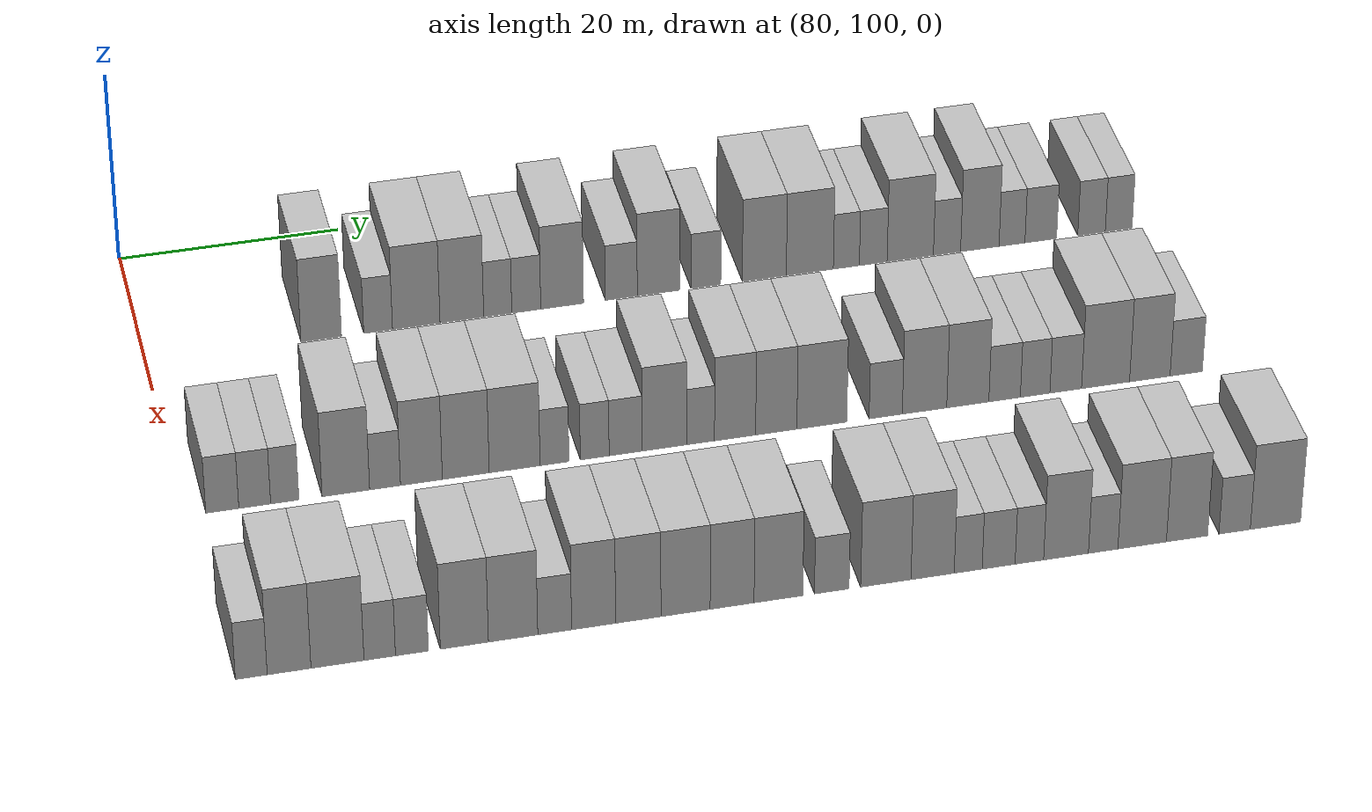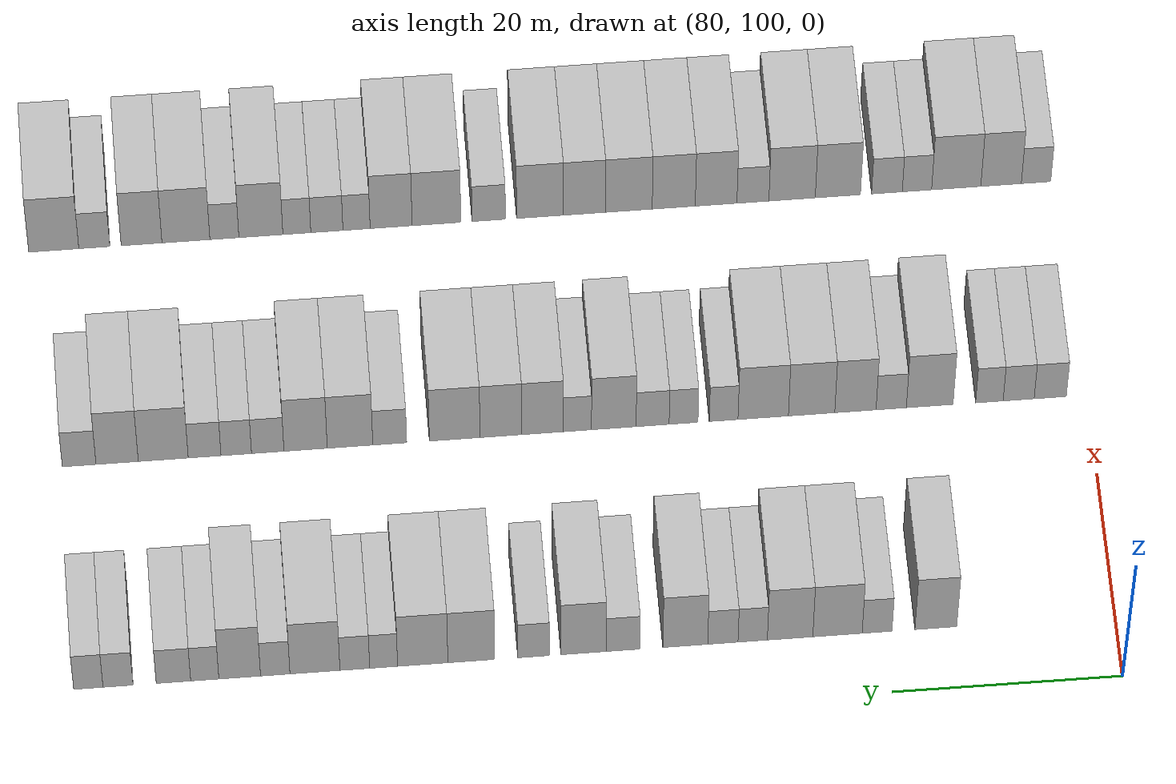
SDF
<sdf version="1.6">
 <world name="default">
  <model name="building_705">
   <static>1</static>
   <pose>91.0000 115.6454 0 0.000000 0.000000 0.000000</pose>
   <link name="link">
    <pose>0 0 4.50 0 0 0</pose>
    <collision name="collision"><geometry><box><size>10.0000 3.6379 9.0000</size></box></geometry></collision>
    <visual name="visual">
     <cast_shadows>0</cast_shadows>
     <geometry><box><size>10.0000 3.6379 9.0000</size></box></geometry>
     <material>
      <script>
       <uri>model://HANNAS_wall/materials/scripts</uri>
       <uri>model://HANNAS_wall/materials/textures</uri>
       <name>vrc/HANNAS_wall</name>
      </script>
     </material>
    </visual>
   </link>
  </model>
  <model name="building_706">
   <static>1</static>
   <pose>91.0000 120.7601 0 0.000000 0.000000 0.000000</pose>
   <link name="link">
    <pose>0 0 3.00 0 0 0</pose>
    <collision name="collision"><geometry><box><size>10.0000 2.5914 6.0000</size></box></geometry></collision>
    <visual name="visual">
     <cast_shadows>0</cast_shadows>
     <geometry><box><size>10.0000 2.5914 6.0000</size></box></geometry>
     <material>
      <script>
       <uri>model://HANNAS_wall/materials/scripts</uri>
       <uri>model://HANNAS_wall/materials/textures</uri>
       <name>vrc/HANNAS_wall</name>
      </script>
     </material>
    </visual>
   </link>
  </model>
  <model name="building_707">
   <static>1</static>
   <pose>91.0000 124.1996 0 0.000000 0.000000 0.000000</pose>
   <link name="link">
    <pose>0 0 4.50 0 0 0</pose>
    <collision name="collision"><geometry><box><size>10.0000 4.2877 9.0000</size></box></geometry></collision>
    <visual name="visual">
     <cast_shadows>0</cast_shadows>
     <geometry><box><size>10.0000 4.2877 9.0000</size></box></geometry>
     <material>
      <script>
       <uri>model://HANNAS_wall/materials/scripts</uri>
       <uri>model://HANNAS_wall/materials/textures</uri>
       <name>vrc/HANNAS_wall</name>
      </script>
     </material>
    </visual>
   </link>
  </model>
  <model name="building_708">
   <static>1</static>
   <pose>91.0000 128.3215 0 0.000000 0.000000 0.000000</pose>
   <link name="link">
    <pose>0 0 4.50 0 0 0</pose>
    <collision name="collision"><geometry><box><size>10.0000 3.9561 9.0000</size></box></geometry></collision>
    <visual name="visual">
     <cast_shadows>0</cast_shadows>
     <geometry><box><size>10.0000 3.9561 9.0000</size></box></geometry>
     <material>
      <script>
       <uri>model://HANNAS_wall/materials/scripts</uri>
       <uri>model://HANNAS_wall/materials/textures</uri>
       <name>vrc/HANNAS_wall</name>
      </script>
     </material>
    </visual>
   </link>
  </model>
  <model name="building_709">
   <static>1</static>
   <pose>91.0000 131.5727 0 0.000000 0.000000 0.000000</pose>
   <link name="link">
    <pose>0 0 3.00 0 0 0</pose>
    <collision name="collision"><geometry><box><size>10.0000 2.5462 6.0000</size></box></geometry></collision>
    <visual name="visual">
     <cast_shadows>0</cast_shadows>
     <geometry><box><size>10.0000 2.5462 6.0000</size></box></geometry>
     <material>
      <script>
       <uri>model://HANNAS_wall/materials/scripts</uri>
       <uri>model://HANNAS_wall/materials/textures</uri>
       <name>vrc/HANNAS_wall</name>
      </script>
     </material>
    </visual>
   </link>
  </model>
  <model name="building_710">
   <static>1</static>
   <pose>91.0000 134.1637 0 0.000000 0.000000 0.000000</pose>
   <link name="link">
    <pose>0 0 3.00 0 0 0</pose>
    <collision name="collision"><geometry><box><size>10.0000 2.6357 6.0000</size></box></geometry></collision>
    <visual name="visual">
     <cast_shadows>0</cast_shadows>
     <geometry><box><size>10.0000 2.6357 6.0000</size></box></geometry>
     <material>
      <script>
       <uri>model://HANNAS_wall/materials/scripts</uri>
       <uri>model://HANNAS_wall/materials/textures</uri>
       <name>vrc/HANNAS_wall</name>
      </script>
     </material>
    </visual>
   </link>
  </model>
  <model name="building_711">
   <static>1</static>
   <pose>91.0000 137.4288 0 0.000000 0.000000 0.000000</pose>
   <link name="link">
    <pose>0 0 4.50 0 0 0</pose>
    <collision name="collision"><geometry><box><size>10.0000 3.8945 9.0000</size></box></geometry></collision>
    <visual name="visual">
     <cast_shadows>0</cast_shadows>
     <geometry><box><size>10.0000 3.8945 9.0000</size></box></geometry>
     <material>
      <script>
       <uri>model://HANNAS_wall/materials/scripts</uri>
       <uri>model://HANNAS_wall/materials/textures</uri>
       <name>vrc/HANNAS_wall</name>
      </script>
     </material>
    </visual>
   </link>
  </model>
  <model name="building_712">
   <static>1</static>
   <pose>91.0000 142.8371 0 0.000000 0.000000 0.000000</pose>
   <link name="link">
    <pose>0 0 3.00 0 0 0</pose>
    <collision name="collision"><geometry><box><size>10.0000 2.9221 6.0000</size></box></geometry></collision>
    <visual name="visual">
     <cast_shadows>0</cast_shadows>
     <geometry><box><size>10.0000 2.9221 6.0000</size></box></geometry>
     <material>
      <script>
       <uri>model://HANNAS_wall/materials/scripts</uri>
       <uri>model://HANNAS_wall/materials/textures</uri>
       <name>vrc/HANNAS_wall</name>
      </script>
     </material>
    </visual>
   </link>
  </model>
  <model name="building_713">
   <static>1</static>
   <pose>91.0000 146.2590 0 0.000000 0.000000 0.000000</pose>
   <link name="link">
    <pose>0 0 4.50 0 0 0</pose>
    <collision name="collision"><geometry><box><size>10.0000 3.9218 9.0000</size></box></geometry></collision>
    <visual name="visual">
     <cast_shadows>0</cast_shadows>
     <geometry><box><size>10.0000 3.9218 9.0000</size></box></geometry>
     <material>
      <script>
       <uri>model://HANNAS_wall/materials/scripts</uri>
       <uri>model://HANNAS_wall/materials/textures</uri>
       <name>vrc/HANNAS_wall</name>
      </script>
     </material>
    </visual>
   </link>
  </model>
  <model name="building_714">
   <static>1</static>
   <pose>91.0000 150.5899 0 0.000000 0.000000 0.000000</pose>
   <link name="link">
    <pose>0 0 3.00 0 0 0</pose>
    <collision name="collision"><geometry><box><size>10.0000 2.7399 6.0000</size></box></geometry></collision>
    <visual name="visual">
     <cast_shadows>0</cast_shadows>
     <geometry><box><size>10.0000 2.7399 6.0000</size></box></geometry>
     <material>
      <script>
       <uri>model://HANNAS_wall/materials/scripts</uri>
       <uri>model://HANNAS_wall/materials/textures</uri>
       <name>vrc/HANNAS_wall</name>
      </script>
     </material>
    </visual>
   </link>
  </model>
  <model name="building_715">
   <static>1</static>
   <pose>91.0000 155.9885 0 0.000000 0.000000 0.000000</pose>
   <link name="link">
    <pose>0 0 4.50 0 0 0</pose>
    <collision name="collision"><geometry><box><size>10.0000 4.0573 9.0000</size></box></geometry></collision>
    <visual name="visual">
     <cast_shadows>0</cast_shadows>
     <geometry><box><size>10.0000 4.0573 9.0000</size></box></geometry>
     <material>
      <script>
       <uri>model://HANNAS_wall/materials/scripts</uri>
       <uri>model://HANNAS_wall/materials/textures</uri>
       <name>vrc/HANNAS_wall</name>
      </script>
     </material>
    </visual>
   </link>
  </model>
  <model name="building_716">
   <static>1</static>
   <pose>91.0000 160.1954 0 0.000000 0.000000 0.000000</pose>
   <link name="link">
    <pose>0 0 4.50 0 0 0</pose>
    <collision name="collision"><geometry><box><size>10.0000 4.3566 9.0000</size></box></geometry></collision>
    <visual name="visual">
     <cast_shadows>0</cast_shadows>
     <geometry><box><size>10.0000 4.3566 9.0000</size></box></geometry>
     <material>
      <script>
       <uri>model://HANNAS_wall/materials/scripts</uri>
       <uri>model://HANNAS_wall/materials/textures</uri>
       <name>vrc/HANNAS_wall</name>
      </script>
     </material>
    </visual>
   </link>
  </model>
  <model name="building_717">
   <static>1</static>
   <pose>91.0000 163.5819 0 0.000000 0.000000 0.000000</pose>
   <link name="link">
    <pose>0 0 3.00 0 0 0</pose>
    <collision name="collision"><geometry><box><size>10.0000 2.4165 6.0000</size></box></geometry></collision>
    <visual name="visual">
     <cast_shadows>0</cast_shadows>
     <geometry><box><size>10.0000 2.4165 6.0000</size></box></geometry>
     <material>
      <script>
       <uri>model://HANNAS_wall/materials/scripts</uri>
       <uri>model://HANNAS_wall/materials/textures</uri>
       <name>vrc/HANNAS_wall</name>
      </script>
     </material>
    </visual>
   </link>
  </model>
  <model name="building_718">
   <static>1</static>
   <pose>91.0000 166.0797 0 0.000000 0.000000 0.000000</pose>
   <link name="link">
    <pose>0 0 3.00 0 0 0</pose>
    <collision name="collision"><geometry><box><size>10.0000 2.5789 6.0000</size></box></geometry></collision>
    <visual name="visual">
     <cast_shadows>0</cast_shadows>
     <geometry><box><size>10.0000 2.5789 6.0000</size></box></geometry>
     <material>
      <script>
       <uri>model://HANNAS_wall/materials/scripts</uri>
       <uri>model://HANNAS_wall/materials/textures</uri>
       <name>vrc/HANNAS_wall</name>
      </script>
     </material>
    </visual>
   </link>
  </model>
  <model name="building_719">
   <static>1</static>
   <pose>91.0000 169.5313 0 0.000000 0.000000 0.000000</pose>
   <link name="link">
    <pose>0 0 4.50 0 0 0</pose>
    <collision name="collision"><geometry><box><size>10.0000 4.3245 9.0000</size></box></geometry></collision>
    <visual name="visual">
     <cast_shadows>0</cast_shadows>
     <geometry><box><size>10.0000 4.3245 9.0000</size></box></geometry>
     <material>
      <script>
       <uri>model://HANNAS_wall/materials/scripts</uri>
       <uri>model://HANNAS_wall/materials/textures</uri>
       <name>vrc/HANNAS_wall</name>
      </script>
     </material>
    </visual>
   </link>
  </model>
  <model name="building_720">
   <static>1</static>
   <pose>91.0000 172.9645 0 0.000000 0.000000 0.000000</pose>
   <link name="link">
    <pose>0 0 3.00 0 0 0</pose>
    <collision name="collision"><geometry><box><size>10.0000 2.5418 6.0000</size></box></geometry></collision>
    <visual name="visual">
     <cast_shadows>0</cast_shadows>
     <geometry><box><size>10.0000 2.5418 6.0000</size></box></geometry>
     <material>
      <script>
       <uri>model://HANNAS_wall/materials/scripts</uri>
       <uri>model://HANNAS_wall/materials/textures</uri>
       <name>vrc/HANNAS_wall</name>
      </script>
     </material>
    </visual>
   </link>
  </model>
  <model name="building_721">
   <static>1</static>
   <pose>91.0000 176.0372 0 0.000000 0.000000 0.000000</pose>
   <link name="link">
    <pose>0 0 4.50 0 0 0</pose>
    <collision name="collision"><geometry><box><size>10.0000 3.6036 9.0000</size></box></geometry></collision>
    <visual name="visual">
     <cast_shadows>0</cast_shadows>
     <geometry><box><size>10.0000 3.6036 9.0000</size></box></geometry>
     <material>
      <script>
       <uri>model://HANNAS_wall/materials/scripts</uri>
       <uri>model://HANNAS_wall/materials/textures</uri>
       <name>vrc/HANNAS_wall</name>
      </script>
     </material>
    </visual>
   </link>
  </model>
  <model name="building_722">
   <static>1</static>
   <pose>91.0000 179.0562 0 0.000000 0.000000 0.000000</pose>
   <link name="link">
    <pose>0 0 3.00 0 0 0</pose>
    <collision name="collision"><geometry><box><size>10.0000 2.4345 6.0000</size></box></geometry></collision>
    <visual name="visual">
     <cast_shadows>0</cast_shadows>
     <geometry><box><size>10.0000 2.4345 6.0000</size></box></geometry>
     <material>
      <script>
       <uri>model://HANNAS_wall/materials/scripts</uri>
       <uri>model://HANNAS_wall/materials/textures</uri>
       <name>vrc/HANNAS_wall</name>
      </script>
     </material>
    </visual>
   </link>
  </model>
  <model name="building_723">
   <static>1</static>
   <pose>91.0000 181.7619 0 0.000000 0.000000 0.000000</pose>
   <link name="link">
    <pose>0 0 3.00 0 0 0</pose>
    <collision name="collision"><geometry><box><size>10.0000 2.9769 6.0000</size></box></geometry></collision>
    <visual name="visual">
     <cast_shadows>0</cast_shadows>
     <geometry><box><size>10.0000 2.9769 6.0000</size></box></geometry>
     <material>
      <script>
       <uri>model://HANNAS_wall/materials/scripts</uri>
       <uri>model://HANNAS_wall/materials/textures</uri>
       <name>vrc/HANNAS_wall</name>
      </script>
     </material>
    </visual>
   </link>
  </model>
  <model name="building_724">
   <static>1</static>
   <pose>91.0000 186.5496 0 0.000000 0.000000 0.000000</pose>
   <link name="link">
    <pose>0 0 3.00 0 0 0</pose>
    <collision name="collision"><geometry><box><size>10.0000 2.5984 6.0000</size></box></geometry></collision>
    <visual name="visual">
     <cast_shadows>0</cast_shadows>
     <geometry><box><size>10.0000 2.5984 6.0000</size></box></geometry>
     <material>
      <script>
       <uri>model://HANNAS_wall/materials/scripts</uri>
       <uri>model://HANNAS_wall/materials/textures</uri>
       <name>vrc/HANNAS_wall</name>
      </script>
     </material>
    </visual>
   </link>
  </model>
  <model name="building_725">
   <static>1</static>
   <pose>91.0000 189.1140 0 0.000000 0.000000 0.000000</pose>
   <link name="link">
    <pose>0 0 3.00 0 0 0</pose>
    <collision name="collision"><geometry><box><size>10.0000 2.5305 6.0000</size></box></geometry></collision>
    <visual name="visual">
     <cast_shadows>0</cast_shadows>
     <geometry><box><size>10.0000 2.5305 6.0000</size></box></geometry>
     <material>
      <script>
       <uri>model://HANNAS_wall/materials/scripts</uri>
       <uri>model://HANNAS_wall/materials/textures</uri>
       <name>vrc/HANNAS_wall</name>
      </script>
     </material>
    </visual>
   </link>
  </model>
  <model name="building_881">
   <static>1</static>
   <pose>113.0000 103.3007 0 0.000000 0.000000 0.000000</pose>
   <link name="link">
    <pose>0 0 3.00 0 0 0</pose>
    <collision name="collision"><geometry><box><size>10.0000 2.8365 6.0000</size></box></geometry></collision>
    <visual name="visual">
     <cast_shadows>0</cast_shadows>
     <geometry><box><size>10.0000 2.8365 6.0000</size></box></geometry>
     <material>
      <script>
       <uri>model://HANNAS_wall/materials/scripts</uri>
       <uri>model://HANNAS_wall/materials/textures</uri>
       <name>vrc/HANNAS_wall</name>
      </script>
     </material>
    </visual>
   </link>
  </model>
  <model name="building_882">
   <static>1</static>
   <pose>113.0000 106.0885 0 0.000000 0.000000 0.000000</pose>
   <link name="link">
    <pose>0 0 3.00 0 0 0</pose>
    <collision name="collision"><geometry><box><size>10.0000 2.7393 6.0000</size></box></geometry></collision>
    <visual name="visual">
     <cast_shadows>0</cast_shadows>
     <geometry><box><size>10.0000 2.7393 6.0000</size></box></geometry>
     <material>
      <script>
       <uri>model://HANNAS_wall/materials/scripts</uri>
       <uri>model://HANNAS_wall/materials/textures</uri>
       <name>vrc/HANNAS_wall</name>
      </script>
     </material>
    </visual>
   </link>
  </model>
  <model name="building_883">
   <static>1</static>
   <pose>113.0000 108.6745 0 0.000000 0.000000 0.000000</pose>
   <link name="link">
    <pose>0 0 3.00 0 0 0</pose>
    <collision name="collision"><geometry><box><size>10.0000 2.4327 6.0000</size></box></geometry></collision>
    <visual name="visual">
     <cast_shadows>0</cast_shadows>
     <geometry><box><size>10.0000 2.4327 6.0000</size></box></geometry>
     <material>
      <script>
       <uri>model://HANNAS_wall/materials/scripts</uri>
       <uri>model://HANNAS_wall/materials/textures</uri>
       <name>vrc/HANNAS_wall</name>
      </script>
     </material>
    </visual>
   </link>
  </model>
  <model name="building_884">
   <static>1</static>
   <pose>113.0000 113.9503 0 0.000000 0.000000 0.000000</pose>
   <link name="link">
    <pose>0 0 4.50 0 0 0</pose>
    <collision name="collision"><geometry><box><size>10.0000 4.1188 9.0000</size></box></geometry></collision>
    <visual name="visual">
     <cast_shadows>0</cast_shadows>
     <geometry><box><size>10.0000 4.1188 9.0000</size></box></geometry>
     <material>
      <script>
       <uri>model://HANNAS_wall/materials/scripts</uri>
       <uri>model://HANNAS_wall/materials/textures</uri>
       <name>vrc/HANNAS_wall</name>
      </script>
     </material>
    </visual>
   </link>
  </model>
  <model name="building_885">
   <static>1</static>
   <pose>113.0000 117.3476 0 0.000000 0.000000 0.000000</pose>
   <link name="link">
    <pose>0 0 3.00 0 0 0</pose>
    <collision name="collision"><geometry><box><size>10.0000 2.6758 6.0000</size></box></geometry></collision>
    <visual name="visual">
     <cast_shadows>0</cast_shadows>
     <geometry><box><size>10.0000 2.6758 6.0000</size></box></geometry>
     <material>
      <script>
       <uri>model://HANNAS_wall/materials/scripts</uri>
       <uri>model://HANNAS_wall/materials/textures</uri>
       <name>vrc/HANNAS_wall</name>
      </script>
     </material>
    </visual>
   </link>
  </model>
  <model name="building_886">
   <static>1</static>
   <pose>113.0000 120.5058 0 0.000000 0.000000 0.000000</pose>
   <link name="link">
    <pose>0 0 4.50 0 0 0</pose>
    <collision name="collision"><geometry><box><size>10.0000 3.6405 9.0000</size></box></geometry></collision>
    <visual name="visual">
     <cast_shadows>0</cast_shadows>
     <geometry><box><size>10.0000 3.6405 9.0000</size></box></geometry>
     <material>
      <script>
       <uri>model://HANNAS_wall/materials/scripts</uri>
       <uri>model://HANNAS_wall/materials/textures</uri>
       <name>vrc/HANNAS_wall</name>
      </script>
     </material>
    </visual>
   </link>
  </model>
  <model name="building_887">
   <static>1</static>
   <pose>113.0000 124.3712 0 0.000000 0.000000 0.000000</pose>
   <link name="link">
    <pose>0 0 4.50 0 0 0</pose>
    <collision name="collision"><geometry><box><size>10.0000 4.0903 9.0000</size></box></geometry></collision>
    <visual name="visual">
     <cast_shadows>0</cast_shadows>
     <geometry><box><size>10.0000 4.0903 9.0000</size></box></geometry>
     <material>
      <script>
       <uri>model://HANNAS_wall/materials/scripts</uri>
       <uri>model://HANNAS_wall/materials/textures</uri>
       <name>vrc/HANNAS_wall</name>
      </script>
     </material>
    </visual>
   </link>
  </model>
  <model name="building_888">
   <static>1</static>
   <pose>113.0000 128.6389 0 0.000000 0.000000 0.000000</pose>
   <link name="link">
    <pose>0 0 4.50 0 0 0</pose>
    <collision name="collision"><geometry><box><size>10.0000 4.4450 9.0000</size></box></geometry></collision>
    <visual name="visual">
     <cast_shadows>0</cast_shadows>
     <geometry><box><size>10.0000 4.4450 9.0000</size></box></geometry>
     <material>
      <script>
       <uri>model://HANNAS_wall/materials/scripts</uri>
       <uri>model://HANNAS_wall/materials/textures</uri>
       <name>vrc/HANNAS_wall</name>
      </script>
     </material>
    </visual>
   </link>
  </model>
  <model name="building_889">
   <static>1</static>
   <pose>113.0000 132.1271 0 0.000000 0.000000 0.000000</pose>
   <link name="link">
    <pose>0 0 3.00 0 0 0</pose>
    <collision name="collision"><geometry><box><size>10.0000 2.5314 6.0000</size></box></geometry></collision>
    <visual name="visual">
     <cast_shadows>0</cast_shadows>
     <geometry><box><size>10.0000 2.5314 6.0000</size></box></geometry>
     <material>
      <script>
       <uri>model://HANNAS_wall/materials/scripts</uri>
       <uri>model://HANNAS_wall/materials/textures</uri>
       <name>vrc/HANNAS_wall</name>
      </script>
     </material>
    </visual>
   </link>
  </model>
  <model name="building_890">
   <static>1</static>
   <pose>113.0000 135.6625 0 0.000000 0.000000 0.000000</pose>
   <link name="link">
    <pose>0 0 3.00 0 0 0</pose>
    <collision name="collision"><geometry><box><size>10.0000 2.5394 6.0000</size></box></geometry></collision>
    <visual name="visual">
     <cast_shadows>0</cast_shadows>
     <geometry><box><size>10.0000 2.5394 6.0000</size></box></geometry>
     <material>
      <script>
       <uri>model://HANNAS_wall/materials/scripts</uri>
       <uri>model://HANNAS_wall/materials/textures</uri>
       <name>vrc/HANNAS_wall</name>
      </script>
     </material>
    </visual>
   </link>
  </model>
  <model name="building_891">
   <static>1</static>
   <pose>113.0000 138.3863 0 0.000000 0.000000 0.000000</pose>
   <link name="link">
    <pose>0 0 3.00 0 0 0</pose>
    <collision name="collision"><geometry><box><size>10.0000 2.9083 6.0000</size></box></geometry></collision>
    <visual name="visual">
     <cast_shadows>0</cast_shadows>
     <geometry><box><size>10.0000 2.9083 6.0000</size></box></geometry>
     <material>
      <script>
       <uri>model://HANNAS_wall/materials/scripts</uri>
       <uri>model://HANNAS_wall/materials/textures</uri>
       <name>vrc/HANNAS_wall</name>
      </script>
     </material>
    </visual>
   </link>
  </model>
  <model name="building_892">
   <static>1</static>
   <pose>113.0000 141.8048 0 0.000000 0.000000 0.000000</pose>
   <link name="link">
    <pose>0 0 4.50 0 0 0</pose>
    <collision name="collision"><geometry><box><size>10.0000 3.9286 9.0000</size></box></geometry></collision>
    <visual name="visual">
     <cast_shadows>0</cast_shadows>
     <geometry><box><size>10.0000 3.9286 9.0000</size></box></geometry>
     <material>
      <script>
       <uri>model://HANNAS_wall/materials/scripts</uri>
       <uri>model://HANNAS_wall/materials/textures</uri>
       <name>vrc/HANNAS_wall</name>
      </script>
     </material>
    </visual>
   </link>
  </model>
  <model name="building_893">
   <static>1</static>
   <pose>113.0000 145.0066 0 0.000000 0.000000 0.000000</pose>
   <link name="link">
    <pose>0 0 3.00 0 0 0</pose>
    <collision name="collision"><geometry><box><size>10.0000 2.4750 6.0000</size></box></geometry></collision>
    <visual name="visual">
     <cast_shadows>0</cast_shadows>
     <geometry><box><size>10.0000 2.4750 6.0000</size></box></geometry>
     <material>
      <script>
       <uri>model://HANNAS_wall/materials/scripts</uri>
       <uri>model://HANNAS_wall/materials/textures</uri>
       <name>vrc/HANNAS_wall</name>
      </script>
     </material>
    </visual>
   </link>
  </model>
  <model name="building_894">
   <static>1</static>
   <pose>113.0000 148.0712 0 0.000000 0.000000 0.000000</pose>
   <link name="link">
    <pose>0 0 4.50 0 0 0</pose>
    <collision name="collision"><geometry><box><size>10.0000 3.6544 9.0000</size></box></geometry></collision>
    <visual name="visual">
     <cast_shadows>0</cast_shadows>
     <geometry><box><size>10.0000 3.6544 9.0000</size></box></geometry>
     <material>
      <script>
       <uri>model://HANNAS_wall/materials/scripts</uri>
       <uri>model://HANNAS_wall/materials/textures</uri>
       <name>vrc/HANNAS_wall</name>
      </script>
     </material>
    </visual>
   </link>
  </model>
  <model name="building_895">
   <static>1</static>
   <pose>113.0000 151.7336 0 0.000000 0.000000 0.000000</pose>
   <link name="link">
    <pose>0 0 4.50 0 0 0</pose>
    <collision name="collision"><geometry><box><size>10.0000 3.6705 9.0000</size></box></geometry></collision>
    <visual name="visual">
     <cast_shadows>0</cast_shadows>
     <geometry><box><size>10.0000 3.6705 9.0000</size></box></geometry>
     <material>
      <script>
       <uri>model://HANNAS_wall/materials/scripts</uri>
       <uri>model://HANNAS_wall/materials/textures</uri>
       <name>vrc/HANNAS_wall</name>
      </script>
     </material>
    </visual>
   </link>
  </model>
  <model name="building_896">
   <static>1</static>
   <pose>113.0000 155.7961 0 0.000000 0.000000 0.000000</pose>
   <link name="link">
    <pose>0 0 4.50 0 0 0</pose>
    <collision name="collision"><geometry><box><size>10.0000 4.4544 9.0000</size></box></geometry></collision>
    <visual name="visual">
     <cast_shadows>0</cast_shadows>
     <geometry><box><size>10.0000 4.4544 9.0000</size></box></geometry>
     <material>
      <script>
       <uri>model://HANNAS_wall/materials/scripts</uri>
       <uri>model://HANNAS_wall/materials/textures</uri>
       <name>vrc/HANNAS_wall</name>
      </script>
     </material>
    </visual>
   </link>
  </model>
  <model name="building_897">
   <static>1</static>
   <pose>113.0000 161.5107 0 0.000000 0.000000 0.000000</pose>
   <link name="link">
    <pose>0 0 3.00 0 0 0</pose>
    <collision name="collision"><geometry><box><size>10.0000 2.9748 6.0000</size></box></geometry></collision>
    <visual name="visual">
     <cast_shadows>0</cast_shadows>
     <geometry><box><size>10.0000 2.9748 6.0000</size></box></geometry>
     <material>
      <script>
       <uri>model://HANNAS_wall/materials/scripts</uri>
       <uri>model://HANNAS_wall/materials/textures</uri>
       <name>vrc/HANNAS_wall</name>
      </script>
     </material>
    </visual>
   </link>
  </model>
  <model name="building_898">
   <static>1</static>
   <pose>113.0000 164.9977 0 0.000000 0.000000 0.000000</pose>
   <link name="link">
    <pose>0 0 4.50 0 0 0</pose>
    <collision name="collision"><geometry><box><size>10.0000 3.9992 9.0000</size></box></geometry></collision>
    <visual name="visual">
     <cast_shadows>0</cast_shadows>
     <geometry><box><size>10.0000 3.9992 9.0000</size></box></geometry>
     <material>
      <script>
       <uri>model://HANNAS_wall/materials/scripts</uri>
       <uri>model://HANNAS_wall/materials/textures</uri>
       <name>vrc/HANNAS_wall</name>
      </script>
     </material>
    </visual>
   </link>
  </model>
  <model name="building_899">
   <static>1</static>
   <pose>113.0000 168.8982 0 0.000000 0.000000 0.000000</pose>
   <link name="link">
    <pose>0 0 4.50 0 0 0</pose>
    <collision name="collision"><geometry><box><size>10.0000 3.8018 9.0000</size></box></geometry></collision>
    <visual name="visual">
     <cast_shadows>0</cast_shadows>
     <geometry><box><size>10.0000 3.8018 9.0000</size></box></geometry>
     <material>
      <script>
       <uri>model://HANNAS_wall/materials/scripts</uri>
       <uri>model://HANNAS_wall/materials/textures</uri>
       <name>vrc/HANNAS_wall</name>
      </script>
     </material>
    </visual>
   </link>
  </model>
  <model name="building_900">
   <static>1</static>
   <pose>113.0000 172.2239 0 0.000000 0.000000 0.000000</pose>
   <link name="link">
    <pose>0 0 3.00 0 0 0</pose>
    <collision name="collision"><geometry><box><size>10.0000 2.8495 6.0000</size></box></geometry></collision>
    <visual name="visual">
     <cast_shadows>0</cast_shadows>
     <geometry><box><size>10.0000 2.8495 6.0000</size></box></geometry>
     <material>
      <script>
       <uri>model://HANNAS_wall/materials/scripts</uri>
       <uri>model://HANNAS_wall/materials/textures</uri>
       <name>vrc/HANNAS_wall</name>
      </script>
     </material>
    </visual>
   </link>
  </model>
  <model name="building_901">
   <static>1</static>
   <pose>113.0000 174.9864 0 0.000000 0.000000 0.000000</pose>
   <link name="link">
    <pose>0 0 3.00 0 0 0</pose>
    <collision name="collision"><geometry><box><size>10.0000 2.6756 6.0000</size></box></geometry></collision>
    <visual name="visual">
     <cast_shadows>0</cast_shadows>
     <geometry><box><size>10.0000 2.6756 6.0000</size></box></geometry>
     <material>
      <script>
       <uri>model://HANNAS_wall/materials/scripts</uri>
       <uri>model://HANNAS_wall/materials/textures</uri>
       <name>vrc/HANNAS_wall</name>
      </script>
     </material>
    </visual>
   </link>
  </model>
  <model name="building_902">
   <static>1</static>
   <pose>113.0000 177.7617 0 0.000000 0.000000 0.000000</pose>
   <link name="link">
    <pose>0 0 3.00 0 0 0</pose>
    <collision name="collision"><geometry><box><size>10.0000 2.8749 6.0000</size></box></geometry></collision>
    <visual name="visual">
     <cast_shadows>0</cast_shadows>
     <geometry><box><size>10.0000 2.8749 6.0000</size></box></geometry>
     <material>
      <script>
       <uri>model://HANNAS_wall/materials/scripts</uri>
       <uri>model://HANNAS_wall/materials/textures</uri>
       <name>vrc/HANNAS_wall</name>
      </script>
     </material>
    </visual>
   </link>
  </model>
  <model name="building_903">
   <static>1</static>
   <pose>113.0000 181.3875 0 0.000000 0.000000 0.000000</pose>
   <link name="link">
    <pose>0 0 4.50 0 0 0</pose>
    <collision name="collision"><geometry><box><size>10.0000 4.3768 9.0000</size></box></geometry></collision>
    <visual name="visual">
     <cast_shadows>0</cast_shadows>
     <geometry><box><size>10.0000 4.3768 9.0000</size></box></geometry>
     <material>
      <script>
       <uri>model://HANNAS_wall/materials/scripts</uri>
       <uri>model://HANNAS_wall/materials/textures</uri>
       <name>vrc/HANNAS_wall</name>
      </script>
     </material>
    </visual>
   </link>
  </model>
  <model name="building_904">
   <static>1</static>
   <pose>113.0000 185.4279 0 0.000000 0.000000 0.000000</pose>
   <link name="link">
    <pose>0 0 4.50 0 0 0</pose>
    <collision name="collision"><geometry><box><size>10.0000 3.7041 9.0000</size></box></geometry></collision>
    <visual name="visual">
     <cast_shadows>0</cast_shadows>
     <geometry><box><size>10.0000 3.7041 9.0000</size></box></geometry>
     <material>
      <script>
       <uri>model://HANNAS_wall/materials/scripts</uri>
       <uri>model://HANNAS_wall/materials/textures</uri>
       <name>vrc/HANNAS_wall</name>
      </script>
     </material>
    </visual>
   </link>
  </model>
  <model name="building_905">
   <static>1</static>
   <pose>113.0000 188.7568 0 0.000000 0.000000 0.000000</pose>
   <link name="link">
    <pose>0 0 3.00 0 0 0</pose>
    <collision name="collision"><geometry><box><size>10.0000 2.9536 6.0000</size></box></geometry></collision>
    <visual name="visual">
     <cast_shadows>0</cast_shadows>
     <geometry><box><size>10.0000 2.9536 6.0000</size></box></geometry>
     <material>
      <script>
       <uri>model://HANNAS_wall/materials/scripts</uri>
       <uri>model://HANNAS_wall/materials/textures</uri>
       <name>vrc/HANNAS_wall</name>
      </script>
     </material>
    </visual>
   </link>
  </model>
  <model name="building_1076">
   <static>1</static>
   <pose>135.0000 102.1915 0 0.000000 0.000000 0.000000</pose>
   <link name="link">
    <pose>0 0 3.00 0 0 0</pose>
    <collision name="collision"><geometry><box><size>10.0000 2.6352 6.0000</size></box></geometry></collision>
    <visual name="visual">
     <cast_shadows>0</cast_shadows>
     <geometry><box><size>10.0000 2.6352 6.0000</size></box></geometry>
     <material>
      <script>
       <uri>model://HANNAS_wall/materials/scripts</uri>
       <uri>model://HANNAS_wall/materials/textures</uri>
       <name>vrc/HANNAS_wall</name>
      </script>
     </material>
    </visual>
   </link>
  </model>
  <model name="building_1077">
   <static>1</static>
   <pose>135.0000 105.3240 0 0.000000 0.000000 0.000000</pose>
   <link name="link">
    <pose>0 0 4.50 0 0 0</pose>
    <collision name="collision"><geometry><box><size>10.0000 3.6299 9.0000</size></box></geometry></collision>
    <visual name="visual">
     <cast_shadows>0</cast_shadows>
     <geometry><box><size>10.0000 3.6299 9.0000</size></box></geometry>
     <material>
      <script>
       <uri>model://HANNAS_wall/materials/scripts</uri>
       <uri>model://HANNAS_wall/materials/textures</uri>
       <name>vrc/HANNAS_wall</name>
      </script>
     </material>
    </visual>
   </link>
  </model>
  <model name="building_1078">
   <static>1</static>
   <pose>135.0000 109.3440 0 0.000000 0.000000 0.000000</pose>
   <link name="link">
    <pose>0 0 4.50 0 0 0</pose>
    <collision name="collision"><geometry><box><size>10.0000 4.4099 9.0000</size></box></geometry></collision>
    <visual name="visual">
     <cast_shadows>0</cast_shadows>
     <geometry><box><size>10.0000 4.4099 9.0000</size></box></geometry>
     <material>
      <script>
       <uri>model://HANNAS_wall/materials/scripts</uri>
       <uri>model://HANNAS_wall/materials/textures</uri>
       <name>vrc/HANNAS_wall</name>
      </script>
     </material>
    </visual>
   </link>
  </model>
  <model name="building_1079">
   <static>1</static>
   <pose>135.0000 112.8617 0 0.000000 0.000000 0.000000</pose>
   <link name="link">
    <pose>0 0 3.00 0 0 0</pose>
    <collision name="collision"><geometry><box><size>10.0000 2.6256 6.0000</size></box></geometry></collision>
    <visual name="visual">
     <cast_shadows>0</cast_shadows>
     <geometry><box><size>10.0000 2.6256 6.0000</size></box></geometry>
     <material>
      <script>
       <uri>model://HANNAS_wall/materials/scripts</uri>
       <uri>model://HANNAS_wall/materials/textures</uri>
       <name>vrc/HANNAS_wall</name>
      </script>
     </material>
    </visual>
   </link>
  </model>
  <model name="building_1080">
   <static>1</static>
   <pose>135.0000 115.5487 0 0.000000 0.000000 0.000000</pose>
   <link name="link">
    <pose>0 0 3.00 0 0 0</pose>
    <collision name="collision"><geometry><box><size>10.0000 2.7483 6.0000</size></box></geometry></collision>
    <visual name="visual">
     <cast_shadows>0</cast_shadows>
     <geometry><box><size>10.0000 2.7483 6.0000</size></box></geometry>
     <material>
      <script>
       <uri>model://HANNAS_wall/materials/scripts</uri>
       <uri>model://HANNAS_wall/materials/textures</uri>
       <name>vrc/HANNAS_wall</name>
      </script>
     </material>
    </visual>
   </link>
  </model>
  <model name="building_1081">
   <static>1</static>
   <pose>135.0000 119.9421 0 0.000000 0.000000 0.000000</pose>
   <link name="link">
    <pose>0 0 4.50 0 0 0</pose>
    <collision name="collision"><geometry><box><size>10.0000 4.0385 9.0000</size></box></geometry></collision>
    <visual name="visual">
     <cast_shadows>0</cast_shadows>
     <geometry><box><size>10.0000 4.0385 9.0000</size></box></geometry>
     <material>
      <script>
       <uri>model://HANNAS_wall/materials/scripts</uri>
       <uri>model://HANNAS_wall/materials/textures</uri>
       <name>vrc/HANNAS_wall</name>
      </script>
     </material>
    </visual>
   </link>
  </model>
  <model name="building_1082">
   <static>1</static>
   <pose>135.0000 124.0387 0 0.000000 0.000000 0.000000</pose>
   <link name="link">
    <pose>0 0 4.50 0 0 0</pose>
    <collision name="collision"><geometry><box><size>10.0000 4.1548 9.0000</size></box></geometry></collision>
    <visual name="visual">
     <cast_shadows>0</cast_shadows>
     <geometry><box><size>10.0000 4.1548 9.0000</size></box></geometry>
     <material>
      <script>
       <uri>model://HANNAS_wall/materials/scripts</uri>
       <uri>model://HANNAS_wall/materials/textures</uri>
       <name>vrc/HANNAS_wall</name>
      </script>
     </material>
    </visual>
   </link>
  </model>
  <model name="building_1083">
   <static>1</static>
   <pose>135.0000 127.5449 0 0.000000 0.000000 0.000000</pose>
   <link name="link">
    <pose>0 0 3.00 0 0 0</pose>
    <collision name="collision"><geometry><box><size>10.0000 2.8575 6.0000</size></box></geometry></collision>
    <visual name="visual">
     <cast_shadows>0</cast_shadows>
     <geometry><box><size>10.0000 2.8575 6.0000</size></box></geometry>
     <material>
      <script>
       <uri>model://HANNAS_wall/materials/scripts</uri>
       <uri>model://HANNAS_wall/materials/textures</uri>
       <name>vrc/HANNAS_wall</name>
      </script>
     </material>
    </visual>
   </link>
  </model>
  <model name="building_1084">
   <static>1</static>
   <pose>135.0000 130.8356 0 0.000000 0.000000 0.000000</pose>
   <link name="link">
    <pose>0 0 4.50 0 0 0</pose>
    <collision name="collision"><geometry><box><size>10.0000 3.7240 9.0000</size></box></geometry></collision>
    <visual name="visual">
     <cast_shadows>0</cast_shadows>
     <geometry><box><size>10.0000 3.7240 9.0000</size></box></geometry>
     <material>
      <script>
       <uri>model://HANNAS_wall/materials/scripts</uri>
       <uri>model://HANNAS_wall/materials/textures</uri>
       <name>vrc/HANNAS_wall</name>
      </script>
     </material>
    </visual>
   </link>
  </model>
  <model name="building_1085">
   <static>1</static>
   <pose>135.0000 134.6209 0 0.000000 0.000000 0.000000</pose>
   <link name="link">
    <pose>0 0 4.50 0 0 0</pose>
    <collision name="collision"><geometry><box><size>10.0000 3.8465 9.0000</size></box></geometry></collision>
    <visual name="visual">
     <cast_shadows>0</cast_shadows>
     <geometry><box><size>10.0000 3.8465 9.0000</size></box></geometry>
     <material>
      <script>
       <uri>model://HANNAS_wall/materials/scripts</uri>
       <uri>model://HANNAS_wall/materials/textures</uri>
       <name>vrc/HANNAS_wall</name>
      </script>
     </material>
    </visual>
   </link>
  </model>
  <model name="building_1086">
   <static>1</static>
   <pose>135.0000 138.6362 0 0.000000 0.000000 0.000000</pose>
   <link name="link">
    <pose>0 0 4.50 0 0 0</pose>
    <collision name="collision"><geometry><box><size>10.0000 4.1841 9.0000</size></box></geometry></collision>
    <visual name="visual">
     <cast_shadows>0</cast_shadows>
     <geometry><box><size>10.0000 4.1841 9.0000</size></box></geometry>
     <material>
      <script>
       <uri>model://HANNAS_wall/materials/scripts</uri>
       <uri>model://HANNAS_wall/materials/textures</uri>
       <name>vrc/HANNAS_wall</name>
      </script>
     </material>
    </visual>
   </link>
  </model>
  <model name="building_1087">
   <static>1</static>
   <pose>135.0000 142.6027 0 0.000000 0.000000 0.000000</pose>
   <link name="link">
    <pose>0 0 4.50 0 0 0</pose>
    <collision name="collision"><geometry><box><size>10.0000 3.7489 9.0000</size></box></geometry></collision>
    <visual name="visual">
     <cast_shadows>0</cast_shadows>
     <geometry><box><size>10.0000 3.7489 9.0000</size></box></geometry>
     <material>
      <script>
       <uri>model://HANNAS_wall/materials/scripts</uri>
       <uri>model://HANNAS_wall/materials/textures</uri>
       <name>vrc/HANNAS_wall</name>
      </script>
     </material>
    </visual>
   </link>
  </model>
  <model name="building_1088">
   <static>1</static>
   <pose>135.0000 146.5644 0 0.000000 0.000000 0.000000</pose>
   <link name="link">
    <pose>0 0 4.50 0 0 0</pose>
    <collision name="collision"><geometry><box><size>10.0000 4.1746 9.0000</size></box></geometry></collision>
    <visual name="visual">
     <cast_shadows>0</cast_shadows>
     <geometry><box><size>10.0000 4.1746 9.0000</size></box></geometry>
     <material>
      <script>
       <uri>model://HANNAS_wall/materials/scripts</uri>
       <uri>model://HANNAS_wall/materials/textures</uri>
       <name>vrc/HANNAS_wall</name>
      </script>
     </material>
    </visual>
   </link>
  </model>
  <model name="building_1089">
   <static>1</static>
   <pose>135.0000 151.1386 0 0.000000 0.000000 0.000000</pose>
   <link name="link">
    <pose>0 0 3.00 0 0 0</pose>
    <collision name="collision"><geometry><box><size>10.0000 2.9737 6.0000</size></box></geometry></collision>
    <visual name="visual">
     <cast_shadows>0</cast_shadows>
     <geometry><box><size>10.0000 2.9737 6.0000</size></box></geometry>
     <material>
      <script>
       <uri>model://HANNAS_wall/materials/scripts</uri>
       <uri>model://HANNAS_wall/materials/textures</uri>
       <name>vrc/HANNAS_wall</name>
      </script>
     </material>
    </visual>
   </link>
  </model>
  <model name="building_1090">
   <static>1</static>
   <pose>135.0000 155.7959 0 0.000000 0.000000 0.000000</pose>
   <link name="link">
    <pose>0 0 4.50 0 0 0</pose>
    <collision name="collision"><geometry><box><size>10.0000 4.3408 9.0000</size></box></geometry></collision>
    <visual name="visual">
     <cast_shadows>0</cast_shadows>
     <geometry><box><size>10.0000 4.3408 9.0000</size></box></geometry>
     <material>
      <script>
       <uri>model://HANNAS_wall/materials/scripts</uri>
       <uri>model://HANNAS_wall/materials/textures</uri>
       <name>vrc/HANNAS_wall</name>
      </script>
     </material>
    </visual>
   </link>
  </model>
  <model name="building_1091">
   <static>1</static>
   <pose>135.0000 159.8392 0 0.000000 0.000000 0.000000</pose>
   <link name="link">
    <pose>0 0 4.50 0 0 0</pose>
    <collision name="collision"><geometry><box><size>10.0000 3.7458 9.0000</size></box></geometry></collision>
    <visual name="visual">
     <cast_shadows>0</cast_shadows>
     <geometry><box><size>10.0000 3.7458 9.0000</size></box></geometry>
     <material>
      <script>
       <uri>model://HANNAS_wall/materials/scripts</uri>
       <uri>model://HANNAS_wall/materials/textures</uri>
       <name>vrc/HANNAS_wall</name>
      </script>
     </material>
    </visual>
   </link>
  </model>
  <model name="building_1092">
   <static>1</static>
   <pose>135.0000 162.9245 0 0.000000 0.000000 0.000000</pose>
   <link name="link">
    <pose>0 0 3.00 0 0 0</pose>
    <collision name="collision"><geometry><box><size>10.0000 2.4248 6.0000</size></box></geometry></collision>
    <visual name="visual">
     <cast_shadows>0</cast_shadows>
     <geometry><box><size>10.0000 2.4248 6.0000</size></box></geometry>
     <material>
      <script>
       <uri>model://HANNAS_wall/materials/scripts</uri>
       <uri>model://HANNAS_wall/materials/textures</uri>
       <name>vrc/HANNAS_wall</name>
      </script>
     </material>
    </visual>
   </link>
  </model>
  <model name="building_1093">
   <static>1</static>
   <pose>135.0000 165.5686 0 0.000000 0.000000 0.000000</pose>
   <link name="link">
    <pose>0 0 3.00 0 0 0</pose>
    <collision name="collision"><geometry><box><size>10.0000 2.8634 6.0000</size></box></geometry></collision>
    <visual name="visual">
     <cast_shadows>0</cast_shadows>
     <geometry><box><size>10.0000 2.8634 6.0000</size></box></geometry>
     <material>
      <script>
       <uri>model://HANNAS_wall/materials/scripts</uri>
       <uri>model://HANNAS_wall/materials/textures</uri>
       <name>vrc/HANNAS_wall</name>
      </script>
     </material>
    </visual>
   </link>
  </model>
  <model name="building_1094">
   <static>1</static>
   <pose>135.0000 168.2435 0 0.000000 0.000000 0.000000</pose>
   <link name="link">
    <pose>0 0 3.00 0 0 0</pose>
    <collision name="collision"><geometry><box><size>10.0000 2.4863 6.0000</size></box></geometry></collision>
    <visual name="visual">
     <cast_shadows>0</cast_shadows>
     <geometry><box><size>10.0000 2.4863 6.0000</size></box></geometry>
     <material>
      <script>
       <uri>model://HANNAS_wall/materials/scripts</uri>
       <uri>model://HANNAS_wall/materials/textures</uri>
       <name>vrc/HANNAS_wall</name>
      </script>
     </material>
    </visual>
   </link>
  </model>
  <model name="building_1095">
   <static>1</static>
   <pose>135.0000 171.4443 0 0.000000 0.000000 0.000000</pose>
   <link name="link">
    <pose>0 0 4.50 0 0 0</pose>
    <collision name="collision"><geometry><box><size>10.0000 3.9154 9.0000</size></box></geometry></collision>
    <visual name="visual">
     <cast_shadows>0</cast_shadows>
     <geometry><box><size>10.0000 3.9154 9.0000</size></box></geometry>
     <material>
      <script>
       <uri>model://HANNAS_wall/materials/scripts</uri>
       <uri>model://HANNAS_wall/materials/textures</uri>
       <name>vrc/HANNAS_wall</name>
      </script>
     </material>
    </visual>
   </link>
  </model>
  <model name="building_1096">
   <static>1</static>
   <pose>135.0000 174.6925 0 0.000000 0.000000 0.000000</pose>
   <link name="link">
    <pose>0 0 3.00 0 0 0</pose>
    <collision name="collision"><geometry><box><size>10.0000 2.5810 6.0000</size></box></geometry></collision>
    <visual name="visual">
     <cast_shadows>0</cast_shadows>
     <geometry><box><size>10.0000 2.5810 6.0000</size></box></geometry>
     <material>
      <script>
       <uri>model://HANNAS_wall/materials/scripts</uri>
       <uri>model://HANNAS_wall/materials/textures</uri>
       <name>vrc/HANNAS_wall</name>
      </script>
     </material>
    </visual>
   </link>
  </model>
  <model name="building_1097">
   <static>1</static>
   <pose>135.0000 178.1138 0 0.000000 0.000000 0.000000</pose>
   <link name="link">
    <pose>0 0 4.50 0 0 0</pose>
    <collision name="collision"><geometry><box><size>10.0000 4.2616 9.0000</size></box></geometry></collision>
    <visual name="visual">
     <cast_shadows>0</cast_shadows>
     <geometry><box><size>10.0000 4.2616 9.0000</size></box></geometry>
     <material>
      <script>
       <uri>model://HANNAS_wall/materials/scripts</uri>
       <uri>model://HANNAS_wall/materials/textures</uri>
       <name>vrc/HANNAS_wall</name>
      </script>
     </material>
    </visual>
   </link>
  </model>
  <model name="building_1098">
   <static>1</static>
   <pose>135.0000 182.0589 0 0.000000 0.000000 0.000000</pose>
   <link name="link">
    <pose>0 0 4.50 0 0 0</pose>
    <collision name="collision"><geometry><box><size>10.0000 3.6287 9.0000</size></box></geometry></collision>
    <visual name="visual">
     <cast_shadows>0</cast_shadows>
     <geometry><box><size>10.0000 3.6287 9.0000</size></box></geometry>
     <material>
      <script>
       <uri>model://HANNAS_wall/materials/scripts</uri>
       <uri>model://HANNAS_wall/materials/textures</uri>
       <name>vrc/HANNAS_wall</name>
      </script>
     </material>
    </visual>
   </link>
  </model>
  <model name="building_1099">
   <static>1</static>
   <pose>135.0000 186.2571 0 0.000000 0.000000 0.000000</pose>
   <link name="link">
    <pose>0 0 3.00 0 0 0</pose>
    <collision name="collision"><geometry><box><size>10.0000 2.7677 6.0000</size></box></geometry></collision>
    <visual name="visual">
     <cast_shadows>0</cast_shadows>
     <geometry><box><size>10.0000 2.7677 6.0000</size></box></geometry>
     <material>
      <script>
       <uri>model://HANNAS_wall/materials/scripts</uri>
       <uri>model://HANNAS_wall/materials/textures</uri>
       <name>vrc/HANNAS_wall</name>
      </script>
     </material>
    </visual>
   </link>
  </model>
  <model name="building_1100">
   <static>1</static>
   <pose>135.0000 189.8627 0 0.000000 0.000000 0.000000</pose>
   <link name="link">
    <pose>0 0 4.50 0 0 0</pose>
    <collision name="collision"><geometry><box><size>10.0000 4.4436 9.0000</size></box></geometry></collision>
    <visual name="visual">
     <cast_shadows>0</cast_shadows>
     <geometry><box><size>10.0000 4.4436 9.0000</size></box></geometry>
     <material>
      <script>
       <uri>model://HANNAS_wall/materials/scripts</uri>
       <uri>model://HANNAS_wall/materials/textures</uri>
       <name>vrc/HANNAS_wall</name>
      </script>
     </material>
    </visual>
   </link>
  </model>
 </world>
</sdf>
